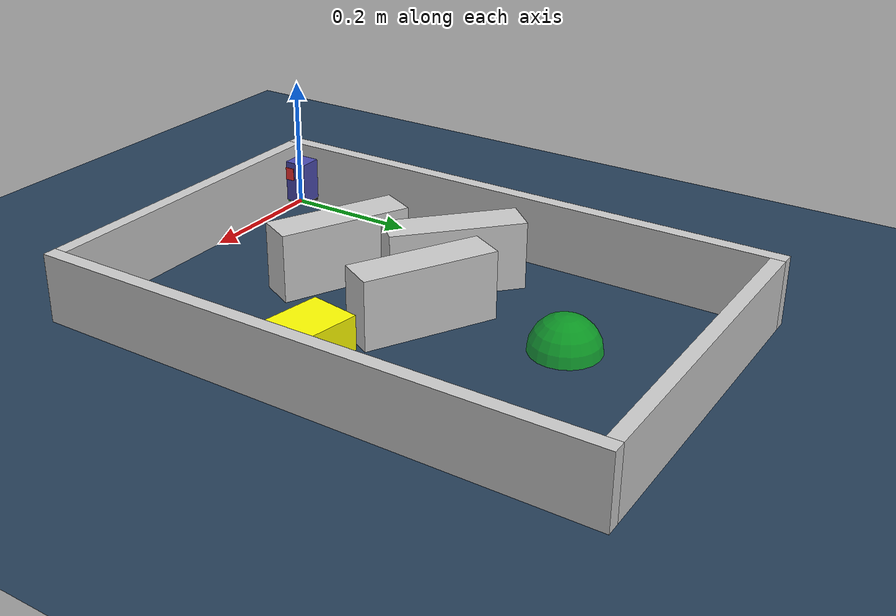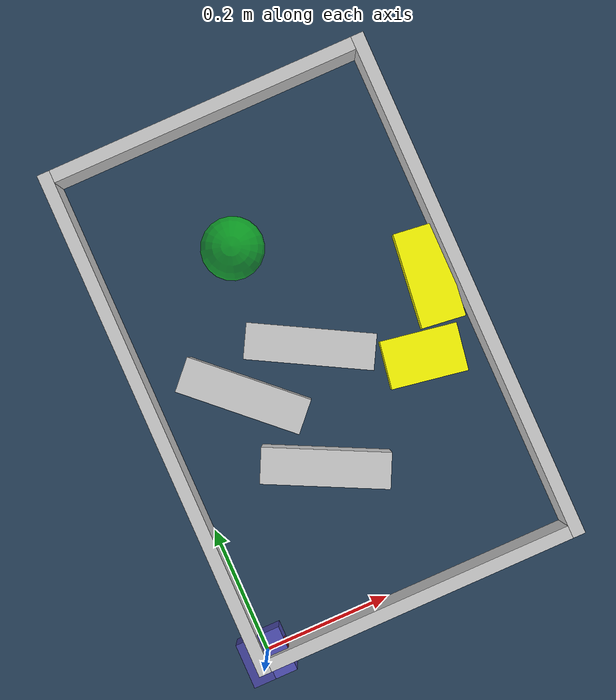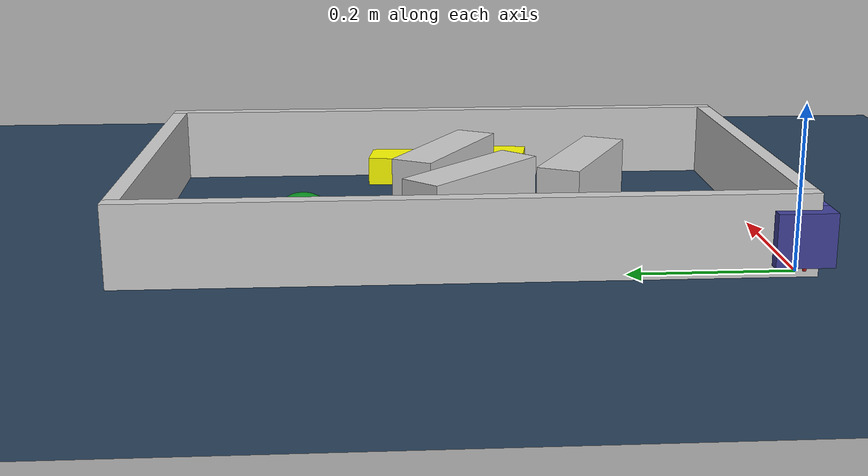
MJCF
<?xml version="1.0" ?>
<mujoco model="generated_environment">
  <option cone="elliptic" integrator="implicitfast" iterations="100" timestep="0.002"/>
  <default>
    <geom density="1"/>
  </default>
  <asset>
    <texture builtin="gradient" height="3072" rgb1="0.3 0.5 0.7" rgb2="0 0 0" type="skybox" width="512"/>
    <texture builtin="checker" height="300" mark="edge" markrgb="0.8 0.8 0.8" name="groundplane" rgb1="0.2 0.3 0.4" rgb2="0.1 0.2 0.3" type="2d" width="300"/>
    <material name="groundplane" reflectance="0.2" texrepeat="5 5" texture="groundplane" texuniform="true"/>
    <material name="robot" rgba="1.0 1.0 0.0 1.0"/>
  </asset>
  <include file="/home/dhruv/projects_dhruv/namo/namo_cpp/test_xml/little-car-modeling-package/assets/mjcf/little_car.xml"/>
  <worldbody>
    <light dir="0 0 -1" directional="true" pos="0 0 1.5"/>
    <geom condim="4" friction="0.5 0.005 0.001" material="groundplane" name="floor" size="0 0 0.05" type="plane"/>
    <body name="walls">
      <geom name="wall_1" condim="4" pos="-0.01 0.3875 0.05" friction="1 0.005 0.0001" rgba="0.800000011920929 0.800000011920929 0.800000011920929 1.0" size="0.01 0.40750000000000003 0.05" type="box"/>
      <geom name="wall_2" condim="4" pos="0.5 0.3875 0.05" friction="1 0.005 0.0001" rgba="0.800000011920929 0.800000011920929 0.800000011920929 1.0" size="0.01 0.40750000000000003 0.05" type="box"/>
      <geom name="wall_3" condim="4" pos="0.245 -0.01 0.05" friction="1 0.005 0.0001" rgba="0.800000011920929 0.800000011920929 0.800000011920929 1.0" size="0.245 0.01 0.05" type="box"/>
      <geom name="wall_4" condim="4" pos="0.245 0.785 0.05" friction="1 0.005 0.0001" rgba="0.800000011920929 0.800000011920929 0.800000011920929 1.0" size="0.245 0.01 0.05" type="box"/>
    </body>
    <body name="obstacle_1_movable">
      <geom name="obstacle_1_movable" condim="4" pos="0.45842767241226356 0.42514630557939964 0.02" quat="0.059962154545868146 0 0 0.9982006511830261" friction="1 0.005 0.0001" rgba="1 1 0 1" size="0.035 0.075 0.02" type="box" mass="0.1"/>
      <joint type="free"/>
    </body>
    <body name="obstacle_2_movable">
      <geom name="obstacle_2_movable" condim="4" pos="0.40049184976432206 0.31618894586421054 0.025" quat="0.7638248070637134 0 0 0.6454236315119559" friction="1 0.005 0.0001" rgba="1 1 0 1" size="0.0375 0.06 0.025" type="box" mass="0.1"/>
      <joint type="free"/>
    </body>
    <body name="wall_5">
      <geom name="wall_5" condim="4" pos="0.19644178178100738 0.22404130051648685 0.05" quat="-0.5279894424403893 0 0 0.8492509338655371" friction="1 0.005 0.0001" rgba="0.800000011920929 0.800000011920929 0.800000011920929 1.0" size="0.0275 0.0975 0.05" type="box"/>
    </body>
    <body name="wall_6">
      <geom name="wall_6" condim="4" pos="0.24835635504389117 0.39903333373904737 0.05" quat="0.8609498359818807 0 0 0.5086898661490837" friction="1 0.005 0.0001" rgba="0.800000011920929 0.800000011920929 0.800000011920929 1.0" size="0.0275 0.0975 0.05" type="box"/>
    </body>
    <body name="wall_7">
      <geom name="wall_7" condim="4" pos="0.12783393949364155 0.3723178702373714 0.05" quat="-0.3993639421547819 0 0 0.916792474721838" friction="1 0.005 0.0001" rgba="0.800000011920929 0.800000011920929 0.800000011920929 1.0" size="0.0275 0.0975 0.05" type="box"/>
    </body>
    <site name="goal" type="sphere" size="0.05 0.05 0.05" rgba="0 1 0 0.5" pos="0.200793 0.586272 0.0"/>
  </worldbody>
</mujoco>

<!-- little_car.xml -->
<mujoco model="little_car">
  <compiler angle="radian" autolimits="true"/>
  <default>
    <geom condim="4"/>
    <joint damping="0.01" armature="0.0001"/>
  </default>
  <worldbody>
    <body name="car" pos="0 0 0.010000">
      <freejoint name="car_freejoint"/>
      <inertial pos="0.000000 0 0.037500" mass="0.350000"
                diaginertia="0.000266 0.000266 0.000286"/>
      <geom name="front_chassis_collision" type="box" pos="0.017500 0 0.037500"
            size="0.017500 0.035000 0.032500"
            rgba="0.3 0.3 0.7 1"/>
      <geom name="rear_chassis_collision" type="box" pos="-0.017500 0 0.037500"
            size="0.017500 0.035000 0.032500"
            rgba="0.25 0.25 0.6 1"/>
      <geom name="front_marker" type="box" pos="0.034000 0 0.050500"
            size="0.002000 0.015000 0.010000"
            rgba="1.0 0.2 0.2 1" contype="0" conaffinity="0"/>

      <body name="rear_support_body" pos="-0.030000 0.000000 0.002500">
        <joint name="rear_caster_joint" type="ball" damping="0.0001"/>
        <inertial pos="0 0 0" mass="0.025000"
                  diaginertia="0.000001 0.000001 0.000001"/>
        <geom name="rear_support" type="sphere"
              pos="0 0 0"
              size="0.002500"
              friction="0.000000 0.000000 0.000000"
              rgba="0.7 0.1 0.1 1"/>
      </body>

      <body name="front_support_body" pos="0.030000 0.000000 0.002500">
        <joint name="front_caster_joint" type="ball" damping="0.0001"/>
        <inertial pos="0 0 0" mass="0.025000"
                  diaginertia="0.000001 0.000001 0.000001"/>
        <geom name="front_support" type="sphere"
              pos="0 0 0"
              size="0.002500"
              friction="0.000000 0.000000 0.000000"
              rgba="0.1 0.7 0.1 1"/>
      </body>

      <body name="left_wheel" pos="0.000000 0.034000 0.015000">
        <inertial pos="0 0 0" mass="0.050000"
                  diaginertia="0.000003 0.000006 0.000003"/>
        <joint name="left_wheel_joint" type="hinge" axis="0 1 0"/>
        <geom name="left_wheel_collision" type="cylinder" size="0.015000 0.000500"
              euler="1.57079632679 0 0" rgba="0.1 0.1 0.1 1"/>
      </body>

      <body name="right_wheel" pos="0.000000 -0.034000 0.015000">
        <inertial pos="0 0 0" mass="0.050000"
                  diaginertia="0.000003 0.000006 0.000003"/>
        <joint name="right_wheel_joint" type="hinge" axis="0 1 0"/>
        <geom name="right_wheel_collision" type="cylinder" size="0.015000 0.000500"
              euler="1.57079632679 0 0" rgba="0.1 0.1 0.1 1"/>
      </body>
    </body>
  </worldbody>
  <contact>
    <exclude body1="car" body2="left_wheel"/>
    <exclude body1="car" body2="right_wheel"/>
  </contact>
  <actuator>
    <velocity name="left_wheel_drive" joint="left_wheel_joint"
              ctrlrange="-25.000000 25.000000"
              kv="0.750000" forcerange="-0.500000 0.500000"/>
    <velocity name="right_wheel_drive" joint="right_wheel_joint"
              ctrlrange="-25.000000 25.000000"
              kv="0.750000" forcerange="-0.500000 0.500000"/>
  </actuator>
</mujoco>
